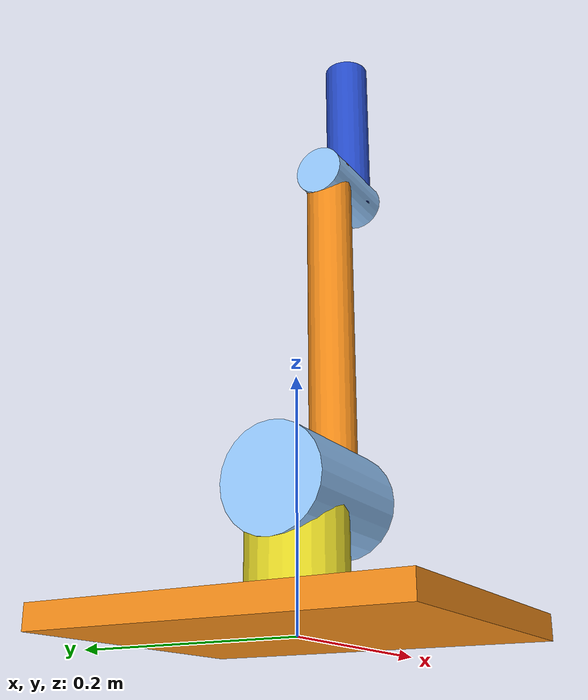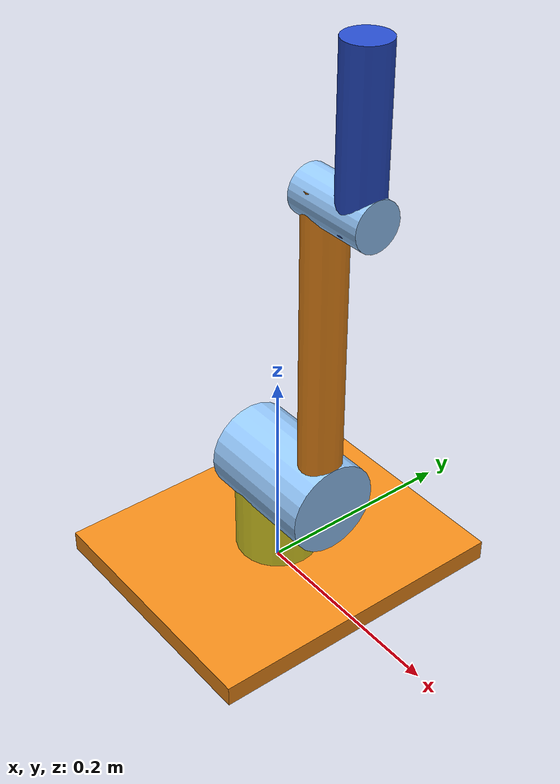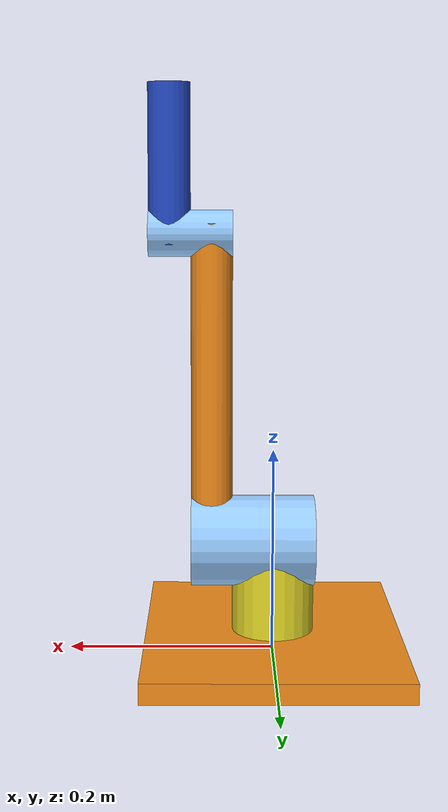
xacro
<?xml version="1.0"?>
<robot xmlns:xacro="http://www.ros.org/wiki/xacro">

    <xacro:include filename="arm_joints.xacro" />

    <xacro:property name="link_0_length" value="0.25" />
    <xacro:property name="link_0_width" value="0.3" />
    <xacro:property name="link_0_height" value="0.02" />

    <xacro:property name="link_1_radius" value="0.04" />
    <xacro:property name="link_1_length" value="0.1" />

    <xacro:property name="link_2_radius" value="0.02" />
    <xacro:property name="link_2_length" value="0.3" />

    <xacro:property name="link_3_radius" value="0.02" />
    <xacro:property name="link_3_length" value="0.15" />

    <material name="LightBlue">
        <color rgba="0.589 0.793 1.0 1.0"/>
    </material>

    <link name="link_0">
        <visual>
            <geometry>
                <box size="${link_0_length} ${link_0_width} ${link_0_height}" />
            </geometry>
            <origin xyz="0 0 ${link_0_height / 2.0}" rpy="0 0 0" />
            <material name="orange" />
        </visual>
        <collision>
            <geometry>
                <box size="${link_0_length} ${link_0_width} ${link_0_height}" />
            </geometry>
            <origin xyz="0 0 ${link_0_height / 2.0}" rpy="0 0 0" />
        </collision>
        <xacro:box_inertia m="0.5" l="${2*link_0_length}" w="${2*link_0_width}"
            h="${2*link_0_height}"
            xyz="0 0 ${link_0_height / 2.0}" rpy="0 0 0" />
    </link>

    <joint name="joint_1" type="revolute">
        <parent link="link_0" />
        <child link="link_1" />
        <origin xyz="0 0 ${link_0_height}" rpy="0 0 0" />
        <axis xyz="0 0 1" />
        <limit lower="-${pi/4}" upper="${pi/2}" effort="100" velocity="1.0" />
        <dynamics friction="0.05" damping="0.1" />
    </joint>

    <link name="link_1">
        <visual>
            <geometry>
                <cylinder radius="${link_1_radius}" length="${link_1_length}" />
            </geometry>
            <origin xyz="0 0 ${link_1_length / 2.0}" rpy="0 0 0" />
            <material name="yellow" />
        </visual>
        <collision>
            <geometry>
                <cylinder radius="${link_1_radius}" length="${link_1_length}" />
            </geometry>
            <origin xyz="0 0 ${link_1_length / 2.0}" rpy="0 0 0" />
        </collision>
        <xacro:cylinder_inertia m="10" r="${2*link_1_radius}" h="${2*link_1_length}"
            xyz="0 0 ${link_1_length / 2.0}" rpy="0 0 0" />
    </link>

    <link name="link_1_endlink">
        <xacro:inertial_block mass="${10/3.0}" length="${2*link_1_radius+2*link_2_radius}"
            radius="${link_1_radius}" />
        <visual>
            <origin xyz="0.0 0.0 ${(2*link_1_radius+2*link_2_radius)/2.0}" rpy="0.0 0.0 0.0" />
            <geometry>
                <cylinder radius="${link_1_radius*1.1}"
                    length="${2*link_1_radius+2*link_2_radius}" />
            </geometry>
            <material name="LightBlue" />
        </visual>

        <collision>
            <origin xyz="0.0 0.0 ${(2*link_1_radius+2*link_2_radius)/2.0}" rpy="0.0 0.0 0.0" />
            <geometry>
                <cylinder radius="${link_1_radius*1.1}"
                    length="${2*link_1_radius+2*link_2_radius}" />
            </geometry>
        </collision>

    </link>

    <joint name="link_1_endjoint" type="fixed">
        <origin xyz="${-link_1_radius} 0.0 ${link_1_length - 0.01}" rpy="0.0 ${pi/2.0} 0.0" />
        <parent link="link_1" />
        <child link="link_1_endlink" />
    </joint>

    <joint name="joint_2" type="revolute">
        <parent link="link_1" />
        <child link="link_2" />
        <origin xyz="${link_1_radius + link_2_radius} 0.0 ${link_1_length}" rpy="0.0 0.0 0.0" />
        <axis xyz="1 0 0" />
        <limit lower="0" upper="${pi/2}" effort="100" velocity="1.0" />
        <dynamics friction="0.05" damping="0.1" />
    </joint>

    <link name="link_2">
        <visual>
            <geometry>
                <cylinder radius="${link_2_radius}" length="${link_2_length}" />
            </geometry>
            <origin xyz="0 0 ${link_2_length / 2.0}" rpy="0 0 0" />
            <material name="orange" />
        </visual>
        <collision>
            <geometry>
                <cylinder radius="${link_2_radius}" length="${link_2_length}" />
            </geometry>
            <origin xyz="0 0 ${link_2_length / 2.0}" rpy="0 0 0" />
        </collision>
        <xacro:cylinder_inertia m="0.3" r="${2*link_2_radius}" h="${2*link_2_length}"
            xyz="0 0 ${link_2_length / 2.0}" rpy="0 0 0" />
    </link>

    <link name="link_2_endlink">
        <xacro:inertial_block mass="${0.3/3.0}" length="${2*link_2_radius+2*link_3_radius}" radius="${link_2_radius}"/>
        <visual>
            <origin xyz="0.0 0.0 ${(2*link_2_radius+2*link_3_radius)/2.0}" rpy="0.0 0.0 0.0"/>
            <geometry>
                <cylinder radius="${link_2_radius*1.1}" length="${2*link_2_radius+2*link_3_radius}"/>
            </geometry>
            <material name="LightBlue"/>
        </visual>

        <collision>
            <origin xyz="0.0 0.0 ${(2*link_2_radius+2*link_3_radius)/2.0}" rpy="0.0 0.0 0.0"/>
            <geometry>
                <cylinder radius="${link_2_radius*1.1}" length="${2*link_2_radius+2*link_3_radius}"/>
            </geometry>
        </collision>
    </link>

    <joint name="link_2_endjoint" type="fixed">
        <origin xyz="${-link_2_radius} 0.0 ${link_2_length - 0.01}" rpy="0.0 ${pi/2.0} 0.0"/>
        <parent link="link_2"/>
        <child link="link_2_endlink"/>
    </joint>

    <joint name="joint_3" type="revolute">
        <parent link="link_2" />
        <child link="link_3" />
        <origin xyz="${link_2_radius + link_3_radius} 0.0 ${link_2_length - link_2_radius}" rpy="0.0 0.0 0.0"/>
        <axis xyz="1 0 0" />
        <limit lower="-${pi/2}" upper="${pi/2}" effort="100" velocity="1.0" />
        <dynamics friction="0.05" damping="0.15" />
    </joint>

    <link name="link_3">
        <visual>
            <geometry>
                <cylinder radius="${link_3_radius}" length="${link_3_length}" />
            </geometry>
            <origin xyz="0 0 ${link_3_length / 2.0}" rpy="0 0 0" />
            <material name="blue" />
        </visual>
        <collision>
            <geometry>
                <cylinder radius="${link_3_radius}" length="${link_3_length}" />
            </geometry>
            <origin xyz="0 0 ${link_3_length / 2.0}" rpy="0 0 0" />
        </collision>
        <xacro:cylinder_inertia m="0.3" r="${2*link_3_radius}" h="${2*link_3_length}"
            xyz="0 0 ${link_3_length / 2.0}" rpy="0 0 0" />
    </link>

    <xacro:config_ctr_gazebo />

</robot>
